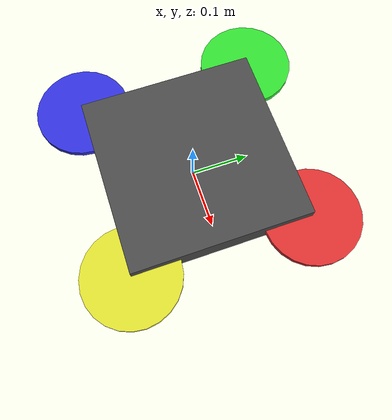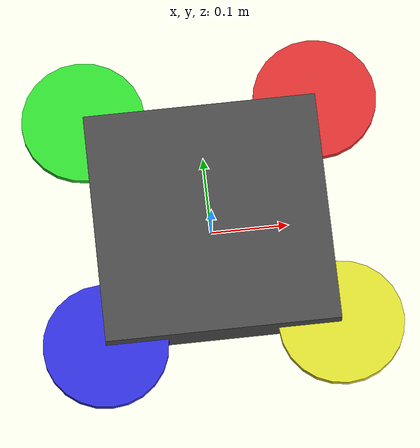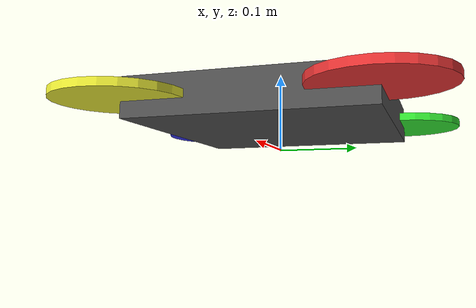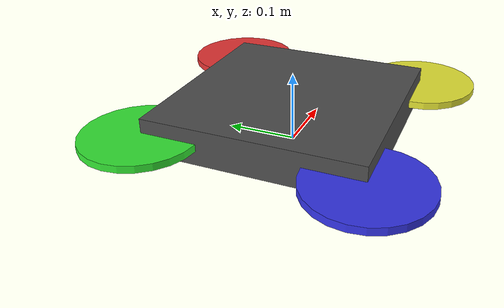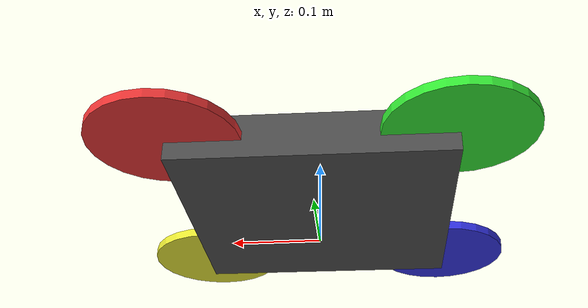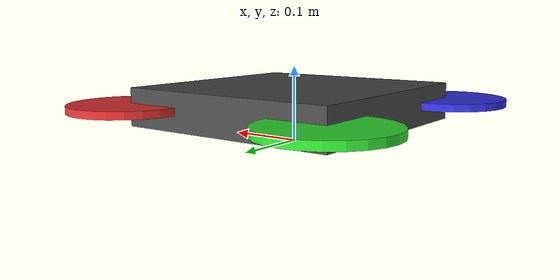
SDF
<?xml version="1.0" ?>
<sdf version="1.9">
  <model name="mini_quad">
    <!-- Base link (quadcopter frame) -->
    <link name="base_link">
      <pose>0 0 0.05 0 0 0</pose>

      <inertial>
        <mass>0.5</mass>
        <inertia>
          <ixx>0.005</ixx>
          <iyy>0.005</iyy>
          <izz>0.009</izz>
        </inertia>
      </inertial>

      <!-- Visual: simple X-frame -->
      <visual name="body_visual">
        <geometry>
          <box>
            <size>0.3 0.3 0.05</size>
          </box>
        </geometry>
        <material>
          <ambient>0.2 0.2 0.2 1</ambient>
          <diffuse>0.3 0.3 0.3 1</diffuse>
        </material>
      </visual>

      <!-- Collision -->
      <collision name="body_collision">
        <geometry>
          <box>
            <size>0.3 0.3 0.05</size>
          </box>
        </geometry>
      </collision>

      <!-- IMU Sensor -->
      <sensor name="imu_sensor" type="imu">
        <always_on>1</always_on>
        <update_rate>1000</update_rate>
        <imu>
          <angular_velocity>
            <x>
              <noise type="gaussian">
                <mean>0.0</mean>
                <stddev>0.01</stddev>
              </noise>
            </x>
            <y>
              <noise type="gaussian">
                <mean>0.0</mean>
                <stddev>0.01</stddev>
              </noise>
            </y>
            <z>
              <noise type="gaussian">
                <mean>0.0</mean>
                <stddev>0.01</stddev>
              </noise>
            </z>
          </angular_velocity>
          <linear_acceleration>
            <x>
              <noise type="gaussian">
                <mean>0.0</mean>
                <stddev>0.1</stddev>
              </noise>
            </x>
            <y>
              <noise type="gaussian">
                <mean>0.0</mean>
                <stddev>0.1</stddev>
              </noise>
            </y>
            <z>
              <noise type="gaussian">
                <mean>0.0</mean>
                <stddev>0.1</stddev>
              </noise>
            </z>
          </linear_acceleration>
        </imu>
        <topic>/mini_quad/imu</topic>
      </sensor>
    </link>

    <!-- Motor links (visual only, forces applied to base_link) -->
    <link name="motor0">
      <pose>0.15 0.15 0.05 0 0 0</pose>
      <visual name="prop_visual">
        <geometry>
          <cylinder>
            <radius>0.08</radius>
            <length>0.01</length>
          </cylinder>
        </geometry>
        <material>
          <ambient>0.8 0.1 0.1 1</ambient>
          <diffuse>0.9 0.2 0.2 1</diffuse>
        </material>
      </visual>
    </link>

    <link name="motor1">
      <pose>-0.15 0.15 0.05 0 0 0</pose>
      <visual name="prop_visual">
        <geometry>
          <cylinder>
            <radius>0.08</radius>
            <length>0.01</length>
          </cylinder>
        </geometry>
        <material>
          <ambient>0.1 0.8 0.1 1</ambient>
          <diffuse>0.2 0.9 0.2 1</diffuse>
        </material>
      </visual>
    </link>

    <link name="motor2">
      <pose>-0.15 -0.15 0.05 0 0 0</pose>
      <visual name="prop_visual">
        <geometry>
          <cylinder>
            <radius>0.08</radius>
            <length>0.01</length>
          </cylinder>
        </geometry>
        <material>
          <ambient>0.1 0.1 0.8 1</ambient>
          <diffuse>0.2 0.2 0.9 1</diffuse>
        </material>
      </visual>
    </link>

    <link name="motor3">
      <pose>0.15 -0.15 0.05 0 0 0</pose>
      <visual name="prop_visual">
        <geometry>
          <cylinder>
            <radius>0.08</radius>
            <length>0.01</length>
          </cylinder>
        </geometry>
        <material>
          <ambient>0.8 0.8 0.1 1</ambient>
          <diffuse>0.9 0.9 0.2 1</diffuse>
        </material>
      </visual>
    </link>

    <!-- Fixed joints (motors attached to frame) -->
    <joint name="motor0_joint" type="fixed">
      <parent>base_link</parent>
      <child>motor0</child>
    </joint>

    <joint name="motor1_joint" type="fixed">
      <parent>base_link</parent>
      <child>motor1</child>
    </joint>

    <joint name="motor2_joint" type="fixed">
      <parent>base_link</parent>
      <child>motor2</child>
    </joint>

    <joint name="motor3_joint" type="fixed">
      <parent>base_link</parent>
      <child>motor3</child>
    </joint>

    <!-- Motor plugin (optional - requires custom Gazebo plugin) -->
  </model>
</sdf>
